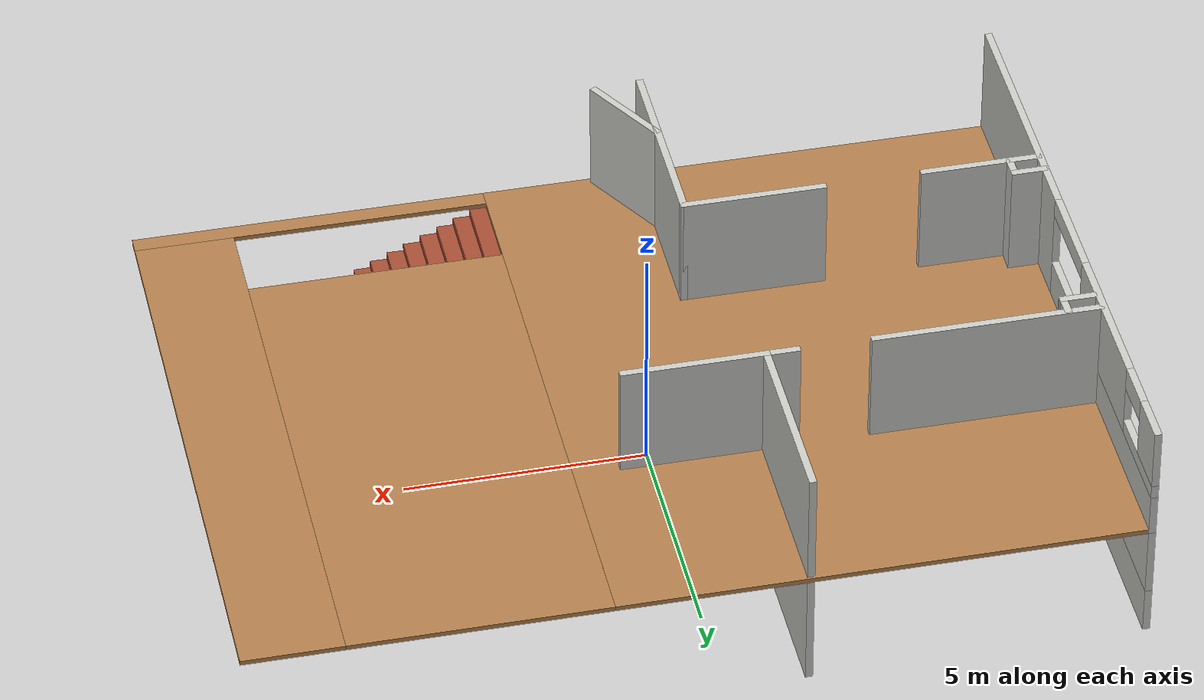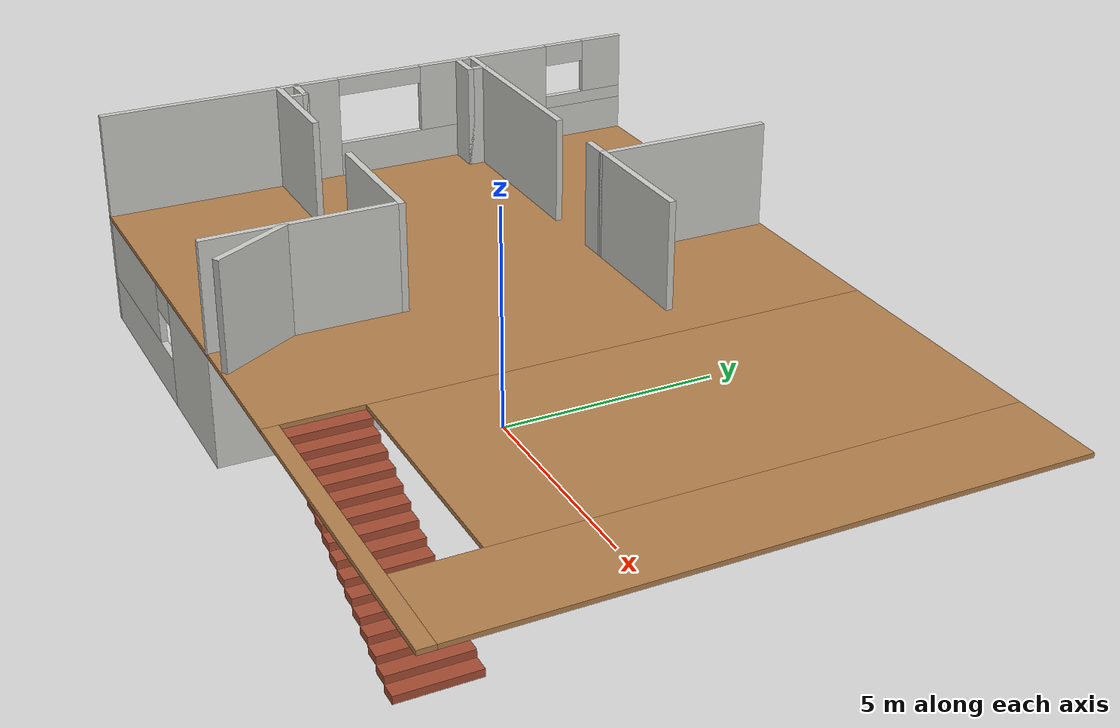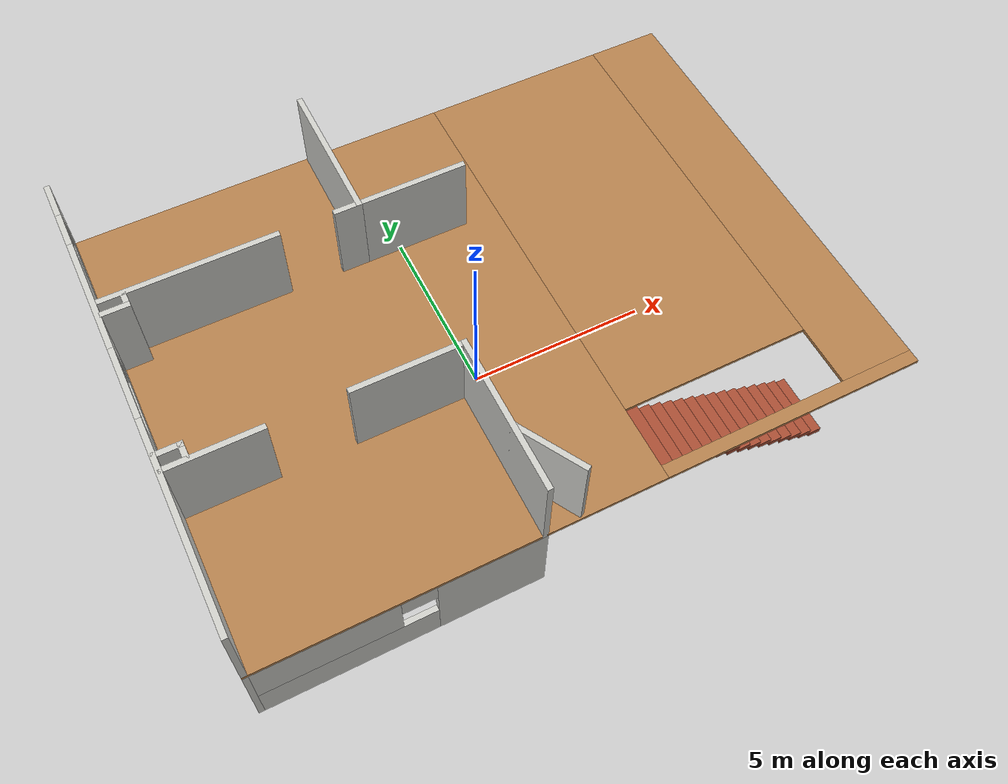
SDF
<sdf version="1.6">
 <model name="Indoor_Scenario1">
  <pose>0.463179 0.653592 0 0 -0 0</pose>
  <link name="Floor_0">
   <pose>-0 -0 2.5 0 -0 0</pose>
   <visual name="Floor_0_Visual_0">
    <pose>-3.6411 0 0.05 0 -0 0</pose>
    <geometry><box><size>10.7178 13 0.1</size></box></geometry>
    <material>
     <script><uri>file://media/materials/scripts/gazebo.material</uri><name>Gazebo/Wood</name></script>
     <ambient>1 1 1 1</ambient>
    </material>
    <meta><layer>1</layer></meta>
   </visual>
   <collision name="Floor_0_Collision_0">
    <geometry><box><size>10.7178 13 0.1</size></box></geometry>
    <pose>-3.6411 0 0.05 0 -0 0</pose>
   </collision>
   <visual name="Floor_0_Visual_1">
    <pose>5.3589 -6.32413 0.05 0 -0 0</pose>
    <geometry><box><size>7.2822 0.351742 0.1</size></box></geometry>
    <material>
     <script><uri>file://media/materials/scripts/gazebo.material</uri><name>Gazebo/Wood</name></script>
     <ambient>1 1 1 1</ambient>
    </material>
    <meta><layer>1</layer></meta>
   </visual>
   <collision name="Floor_0_Collision_1">
    <geometry><box><size>7.2822 0.351742 0.1</size></box></geometry>
    <pose>5.3589 -6.32413 0.05 0 -0 0</pose>
   </collision>
   <visual name="Floor_0_Visual_2">
    <pose>7.97998 0.175871 0.05 0 -0 0</pose>
    <geometry><box><size>2.04005 12.6483 0.1</size></box></geometry>
    <material>
     <script><uri>file://media/materials/scripts/gazebo.material</uri><name>Gazebo/Wood</name></script>
     <ambient>1 1 1 1</ambient>
    </material>
    <meta><layer>1</layer></meta>
   </visual>
   <collision name="Floor_0_Collision_2">
    <geometry><box><size>2.04005 12.6483 0.1</size></box></geometry>
    <pose>7.97998 0.175871 0.05 0 -0 0</pose>
   </collision>
   <visual name="Floor_0_Visual_3">
    <pose>4.33888 1.02587 0.05 0 -0 0</pose>
    <geometry><box><size>5.24215 10.9483 0.1</size></box></geometry>
    <material>
     <script><uri>file://media/materials/scripts/gazebo.material</uri><name>Gazebo/Wood</name></script>
     <ambient>1 1 1 1</ambient>
    </material>
    <meta><layer>1</layer></meta>
   </visual>
   <collision name="Floor_0_Collision_3">
    <geometry><box><size>5.24215 10.9483 0.1</size></box></geometry>
    <pose>4.33888 1.02587 0.05 0 -0 0</pose>
   </collision>
  </link>
  <link name="Stairs_0">
   <visual name="Stairs_0_Visual_0">
    <pose>6.78522 -5.29826 0.083333 0 -0 -1.5708</pose>
    <geometry><box><size>1.7 0.349477 0.166667</size></box></geometry>
    <material>
     <script><uri>file://media/materials/scripts/gazebo.material</uri><name>Gazebo/Bricks</name></script>
     <ambient>1 1 1 1</ambient>
    </material>
    <meta><layer>0</layer></meta>
   </visual>
   <collision name="Stairs_0_Collision_0">
    <geometry><box><size>1.7 0.349477 0.166667</size></box></geometry>
    <pose>6.78522 -5.29826 0.083333 0 -0 -1.5708</pose>
   </collision>
   <visual name="Stairs_0_Visual_1">
    <pose>6.43574 -5.29826 0.25 0 -0 -1.5708</pose>
    <geometry><box><size>1.7 0.349477 0.166667</size></box></geometry>
    <material>
     <script><uri>file://media/materials/scripts/gazebo.material</uri><name>Gazebo/Bricks</name></script>
     <ambient>1 1 1 1</ambient>
    </material>
    <meta><layer>0</layer></meta>
   </visual>
   <collision name="Stairs_0_Collision_1">
    <geometry><box><size>1.7 0.349477 0.166667</size></box></geometry>
    <pose>6.43574 -5.29826 0.25 0 -0 -1.5708</pose>
   </collision>
   <visual name="Stairs_0_Visual_2">
    <pose>6.08626 -5.29826 0.416667 0 -0 -1.5708</pose>
    <geometry><box><size>1.7 0.349477 0.166667</size></box></geometry>
    <material>
     <script><uri>file://media/materials/scripts/gazebo.material</uri><name>Gazebo/Bricks</name></script>
     <ambient>1 1 1 1</ambient>
    </material>
    <meta><layer>0</layer></meta>
   </visual>
   <collision name="Stairs_0_Collision_2">
    <geometry><box><size>1.7 0.349477 0.166667</size></box></geometry>
    <pose>6.08626 -5.29826 0.416667 0 -0 -1.5708</pose>
   </collision>
   <visual name="Stairs_0_Visual_3">
    <pose>5.73679 -5.29826 0.583333 0 -0 -1.5708</pose>
    <geometry><box><size>1.7 0.349477 0.166667</size></box></geometry>
    <material>
     <script><uri>file://media/materials/scripts/gazebo.material</uri><name>Gazebo/Bricks</name></script>
     <ambient>1 1 1 1</ambient>
    </material>
    <meta><layer>0</layer></meta>
   </visual>
   <collision name="Stairs_0_Collision_3">
    <geometry><box><size>1.7 0.349477 0.166667</size></box></geometry>
    <pose>5.73679 -5.29826 0.583333 0 -0 -1.5708</pose>
   </collision>
   <visual name="Stairs_0_Visual_4">
    <pose>5.38731 -5.29826 0.75 0 -0 -1.5708</pose>
    <geometry><box><size>1.7 0.349477 0.166667</size></box></geometry>
    <material>
     <script><uri>file://media/materials/scripts/gazebo.material</uri><name>Gazebo/Bricks</name></script>
     <ambient>1 1 1 1</ambient>
    </material>
    <meta><layer>0</layer></meta>
   </visual>
   <collision name="Stairs_0_Collision_4">
    <geometry><box><size>1.7 0.349477 0.166667</size></box></geometry>
    <pose>5.38731 -5.29826 0.75 0 -0 -1.5708</pose>
   </collision>
   <visual name="Stairs_0_Visual_5">
    <pose>5.03783 -5.29826 0.916667 0 -0 -1.5708</pose>
    <geometry><box><size>1.7 0.349477 0.166667</size></box></geometry>
    <material>
     <script><uri>file://media/materials/scripts/gazebo.material</uri><name>Gazebo/Bricks</name></script>
     <ambient>1 1 1 1</ambient>
    </material>
    <meta><layer>0</layer></meta>
   </visual>
   <collision name="Stairs_0_Collision_5">
    <geometry><box><size>1.7 0.349477 0.166667</size></box></geometry>
    <pose>5.03783 -5.29826 0.916667 0 -0 -1.5708</pose>
   </collision>
   <visual name="Stairs_0_Visual_6">
    <pose>4.68835 -5.29826 1.08333 0 -0 -1.5708</pose>
    <geometry><box><size>1.7 0.349477 0.166667</size></box></geometry>
    <material>
     <script><uri>file://media/materials/scripts/gazebo.material</uri><name>Gazebo/Bricks</name></script>
     <ambient>1 1 1 1</ambient>
    </material>
    <meta><layer>0</layer></meta>
   </visual>
   <collision name="Stairs_0_Collision_6">
    <geometry><box><size>1.7 0.349477 0.166667</size></box></geometry>
    <pose>4.68835 -5.29826 1.08333 0 -0 -1.5708</pose>
   </collision>
   <visual name="Stairs_0_Visual_7">
    <pose>4.33888 -5.29826 1.25 0 -0 -1.5708</pose>
    <geometry><box><size>1.7 0.349477 0.166667</size></box></geometry>
    <material>
     <script><uri>file://media/materials/scripts/gazebo.material</uri><name>Gazebo/Bricks</name></script>
     <ambient>1 1 1 1</ambient>
    </material>
    <meta><layer>0</layer></meta>
   </visual>
   <collision name="Stairs_0_Collision_7">
    <geometry><box><size>1.7 0.349477 0.166667</size></box></geometry>
    <pose>4.33888 -5.29826 1.25 0 -0 -1.5708</pose>
   </collision>
   <visual name="Stairs_0_Visual_8">
    <pose>3.9894 -5.29826 1.41667 0 -0 -1.5708</pose>
    <geometry><box><size>1.7 0.349477 0.166667</size></box></geometry>
    <material>
     <script><uri>file://media/materials/scripts/gazebo.material</uri><name>Gazebo/Bricks</name></script>
     <ambient>1 1 1 1</ambient>
    </material>
    <meta><layer>0</layer></meta>
   </visual>
   <collision name="Stairs_0_Collision_8">
    <geometry><box><size>1.7 0.349477 0.166667</size></box></geometry>
    <pose>3.9894 -5.29826 1.41667 0 -0 -1.5708</pose>
   </collision>
   <visual name="Stairs_0_Visual_9">
    <pose>3.63992 -5.29826 1.58333 0 -0 -1.5708</pose>
    <geometry><box><size>1.7 0.349477 0.166667</size></box></geometry>
    <material>
     <script><uri>file://media/materials/scripts/gazebo.material</uri><name>Gazebo/Bricks</name></script>
     <ambient>1 1 1 1</ambient>
    </material>
    <meta><layer>0</layer></meta>
   </visual>
   <collision name="Stairs_0_Collision_9">
    <geometry><box><size>1.7 0.349477 0.166667</size></box></geometry>
    <pose>3.63992 -5.29826 1.58333 0 -0 -1.5708</pose>
   </collision>
   <visual name="Stairs_0_Visual_10">
    <pose>3.29045 -5.29826 1.75 0 -0 -1.5708</pose>
    <geometry><box><size>1.7 0.349477 0.166667</size></box></geometry>
    <material>
     <script><uri>file://media/materials/scripts/gazebo.material</uri><name>Gazebo/Bricks</name></script>
     <ambient>1 1 1 1</ambient>
    </material>
    <meta><layer>0</layer></meta>
   </visual>
   <collision name="Stairs_0_Collision_10">
    <geometry><box><size>1.7 0.349477 0.166667</size></box></geometry>
    <pose>3.29045 -5.29826 1.75 0 -0 -1.5708</pose>
   </collision>
   <visual name="Stairs_0_Visual_11">
    <pose>2.94097 -5.29826 1.91667 0 -0 -1.5708</pose>
    <geometry><box><size>1.7 0.349477 0.166667</size></box></geometry>
    <material>
     <script><uri>file://media/materials/scripts/gazebo.material</uri><name>Gazebo/Bricks</name></script>
     <ambient>1 1 1 1</ambient>
    </material>
    <meta><layer>0</layer></meta>
   </visual>
   <collision name="Stairs_0_Collision_11">
    <geometry><box><size>1.7 0.349477 0.166667</size></box></geometry>
    <pose>2.94097 -5.29826 1.91667 0 -0 -1.5708</pose>
   </collision>
   <visual name="Stairs_0_Visual_12">
    <pose>2.59149 -5.29826 2.08333 0 -0 -1.5708</pose>
    <geometry><box><size>1.7 0.349477 0.166667</size></box></geometry>
    <material>
     <script><uri>file://media/materials/scripts/gazebo.material</uri><name>Gazebo/Bricks</name></script>
     <ambient>1 1 1 1</ambient>
    </material>
    <meta><layer>0</layer></meta>
   </visual>
   <collision name="Stairs_0_Collision_12">
    <geometry><box><size>1.7 0.349477 0.166667</size></box></geometry>
    <pose>2.59149 -5.29826 2.08333 0 -0 -1.5708</pose>
   </collision>
   <visual name="Stairs_0_Visual_13">
    <pose>2.24202 -5.29826 2.25 0 -0 -1.5708</pose>
    <geometry><box><size>1.7 0.349477 0.166667</size></box></geometry>
    <material>
     <script><uri>file://media/materials/scripts/gazebo.material</uri><name>Gazebo/Bricks</name></script>
     <ambient>1 1 1 1</ambient>
    </material>
    <meta><layer>0</layer></meta>
   </visual>
   <collision name="Stairs_0_Collision_13">
    <geometry><box><size>1.7 0.349477 0.166667</size></box></geometry>
    <pose>2.24202 -5.29826 2.25 0 -0 -1.5708</pose>
   </collision>
   <visual name="Stairs_0_Visual_14">
    <pose>1.89254 -5.29826 2.41667 0 -0 -1.5708</pose>
    <geometry><box><size>1.7 0.349477 0.166667</size></box></geometry>
    <material>
     <script><uri>file://media/materials/scripts/gazebo.material</uri><name>Gazebo/Bricks</name></script>
     <ambient>1 1 1 1</ambient>
    </material>
    <meta><layer>0</layer></meta>
   </visual>
   <collision name="Stairs_0_Collision_14">
    <geometry><box><size>1.7 0.349477 0.166667</size></box></geometry>
    <pose>1.89254 -5.29826 2.41667 0 -0 -1.5708</pose>
   </collision>
  </link>
  <link name="Wall_0">
   <pose>-5.25 -6.425 0 0 -0 3.14159</pose>
   <visual name="Wall_0_Visual_0">
    <pose>-2.33577 0 1.25 0 -0 0</pose>
    <geometry><box><size>2.82847 0.15 2.5</size></box></geometry>
    <material>
     <script><uri>file://media/materials/scripts/gazebo.material</uri><name>Gazebo/CeilingTiled</name></script>
     <ambient>0.647059 0.505882 0.309804 1</ambient>
    </material>
    <meta><layer>0</layer></meta>
   </visual>
   <collision name="Wall_0_Collision_0">
    <geometry><box><size>2.82847 0.15 2.5</size></box></geometry>
    <pose>-2.33577 0 1.25 0 -0 0</pose>
   </collision>
   <visual name="Wall_0_Visual_1">
    <pose>1.41423 0 0.55 0 -0 0</pose>
    <geometry><box><size>4.67153 0.15 1.1</size></box></geometry>
    <material>
     <script><uri>file://media/materials/scripts/gazebo.material</uri><name>Gazebo/CeilingTiled</name></script>
     <ambient>0.647059 0.505882 0.309804 1</ambient>
    </material>
    <meta><layer>0</layer></meta>
   </visual>
   <collision name="Wall_0_Collision_1">
    <geometry><box><size>4.67153 0.15 1.1</size></box></geometry>
    <pose>1.41423 0 0.55 0 -0 0</pose>
   </collision>
   <visual name="Wall_0_Visual_2">
    <pose>1.86423 0 1.8 0 -0 0</pose>
    <geometry><box><size>3.77153 0.15 1.4</size></box></geometry>
    <material>
     <script><uri>file://media/materials/scripts/gazebo.material</uri><name>Gazebo/CeilingTiled</name></script>
     <ambient>0.647059 0.505882 0.309804 1</ambient>
    </material>
    <meta><layer>0</layer></meta>
   </visual>
   <collision name="Wall_0_Collision_2">
    <geometry><box><size>3.77153 0.15 1.4</size></box></geometry>
    <pose>1.86423 0 1.8 0 -0 0</pose>
   </collision>
   <visual name="Wall_0_Visual_3">
    <pose>-0.471532 0 2.2 0 -0 0</pose>
    <geometry><box><size>0.9 0.15 0.6</size></box></geometry>
    <material>
     <script><uri>file://media/materials/scripts/gazebo.material</uri><name>Gazebo/CeilingTiled</name></script>
     <ambient>0.647059 0.505882 0.309804 1</ambient>
    </material>
    <meta><layer>0</layer></meta>
   </visual>
   <collision name="Wall_0_Collision_3">
    <geometry><box><size>0.9 0.15 0.6</size></box></geometry>
    <pose>-0.471532 0 2.2 0 -0 0</pose>
   </collision>
  </link>
  <link name="Wall_1">
   <pose>-8.925 -0 0 0 -0 1.5708</pose>
   <visual name="Wall_1_Visual_0">
    <pose>-5.77686 0 1.25 0 -0 0</pose>
    <geometry><box><size>1.44627 0.15 2.5</size></box></geometry>
    <material>
     <script><uri>file://media/materials/scripts/gazebo.material</uri><name>Gazebo/CeilingTiled</name></script>
     <ambient>0.647059 0.505882 0.309804 1</ambient>
    </material>
    <meta><layer>0</layer></meta>
   </visual>
   <collision name="Wall_1_Collision_0">
    <geometry><box><size>1.44627 0.15 2.5</size></box></geometry>
    <pose>-5.77686 0 1.25 0 -0 0</pose>
   </collision>
   <visual name="Wall_1_Visual_1">
    <pose>-2.10736 0 0.5 0 -0 0</pose>
    <geometry><box><size>5.89273 0.15 1</size></box></geometry>
    <material>
     <script><uri>file://media/materials/scripts/gazebo.material</uri><name>Gazebo/CeilingTiled</name></script>
     <ambient>0.647059 0.505882 0.309804 1</ambient>
    </material>
    <meta><layer>0</layer></meta>
   </visual>
   <collision name="Wall_1_Collision_1">
    <geometry><box><size>5.89273 0.15 1</size></box></geometry>
    <pose>-2.10736 0 0.5 0 -0 0</pose>
   </collision>
   <visual name="Wall_1_Visual_2">
    <pose>3.6695 0 0.5 0 -0 0</pose>
    <geometry><box><size>5.66099 0.15 1</size></box></geometry>
    <material>
     <script><uri>file://media/materials/scripts/gazebo.material</uri><name>Gazebo/CeilingTiled</name></script>
     <ambient>0.647059 0.505882 0.309804 1</ambient>
    </material>
    <meta><layer>0</layer></meta>
   </visual>
   <collision name="Wall_1_Collision_2">
    <geometry><box><size>5.66099 0.15 1</size></box></geometry>
    <pose>3.6695 0 0.5 0 -0 0</pose>
   </collision>
   <visual name="Wall_1_Visual_3">
    <pose>4.1195 0 1.75 0 -0 0</pose>
    <geometry><box><size>4.76099 0.15 1.5</size></box></geometry>
    <material>
     <script><uri>file://media/materials/scripts/gazebo.material</uri><name>Gazebo/CeilingTiled</name></script>
     <ambient>0.647059 0.505882 0.309804 1</ambient>
    </material>
    <meta><layer>0</layer></meta>
   </visual>
   <collision name="Wall_1_Collision_3">
    <geometry><box><size>4.76099 0.15 1.5</size></box></geometry>
    <pose>4.1195 0 1.75 0 -0 0</pose>
   </collision>
   <visual name="Wall_1_Visual_4">
    <pose>-1.60736 0 1.75 0 -0 0</pose>
    <geometry><box><size>4.89273 0.15 1.5</size></box></geometry>
    <material>
     <script><uri>file://media/materials/scripts/gazebo.material</uri><name>Gazebo/CeilingTiled</name></script>
     <ambient>0.647059 0.505882 0.309804 1</ambient>
    </material>
    <meta><layer>0</layer></meta>
   </visual>
   <collision name="Wall_1_Collision_4">
    <geometry><box><size>4.89273 0.15 1.5</size></box></geometry>
    <pose>-1.60736 0 1.75 0 -0 0</pose>
   </collision>
   <visual name="Wall_1_Visual_5">
    <pose>-1.60736 0 1.75 0 -0 0</pose>
    <geometry><box><size>4.89273 0.15 1.5</size></box></geometry>
    <material>
     <script><uri>file://media/materials/scripts/gazebo.material</uri><name>Gazebo/CeilingTiled</name></script>
     <ambient>0.647059 0.505882 0.309804 1</ambient>
    </material>
    <meta><layer>0</layer></meta>
   </visual>
   <collision name="Wall_1_Collision_5">
    <geometry><box><size>4.89273 0.15 1.5</size></box></geometry>
    <pose>-1.60736 0 1.75 0 -0 0</pose>
   </collision>
   <visual name="Wall_1_Visual_6">
    <pose>1.28901 0 2.25 0 -0 0</pose>
    <geometry><box><size>0.9 0.15 0.5</size></box></geometry>
    <material>
     <script><uri>file://media/materials/scripts/gazebo.material</uri><name>Gazebo/CeilingTiled</name></script>
     <ambient>0.647059 0.505882 0.309804 1</ambient>
    </material>
    <meta><layer>0</layer></meta>
   </visual>
   <collision name="Wall_1_Collision_6">
    <geometry><box><size>0.9 0.15 0.5</size></box></geometry>
    <pose>1.28901 0 2.25 0 -0 0</pose>
   </collision>
   <visual name="Wall_1_Visual_7">
    <pose>1.28901 0 2.25 0 -0 0</pose>
    <geometry><box><size>0.9 0.15 0.5</size></box></geometry>
    <material>
     <script><uri>file://media/materials/scripts/gazebo.material</uri><name>Gazebo/CeilingTiled</name></script>
     <ambient>0.647059 0.505882 0.309804 1</ambient>
    </material>
    <meta><layer>0</layer></meta>
   </visual>
   <collision name="Wall_1_Collision_7">
    <geometry><box><size>0.9 0.15 0.5</size></box></geometry>
    <pose>1.28901 0 2.25 0 -0 0</pose>
   </collision>
   <visual name="Wall_1_Visual_8">
    <pose>-4.55373 0 2.35 0 -0 0</pose>
    <geometry><box><size>1 0.15 0.3</size></box></geometry>
    <material>
     <script><uri>file://media/materials/scripts/gazebo.material</uri><name>Gazebo/CeilingTiled</name></script>
     <ambient>0.647059 0.505882 0.309804 1</ambient>
    </material>
    <meta><layer>0</layer></meta>
   </visual>
   <collision name="Wall_1_Collision_8">
    <geometry><box><size>1 0.15 0.3</size></box></geometry>
    <pose>-4.55373 0 2.35 0 -0 0</pose>
   </collision>
  </link>
  <link name="Wall_10">
   <collision name="Wall_10_Collision">
    <geometry><box><size>4.25 0.15 2.5</size></box></geometry>
    <pose>0 0 1.25 0 -0 0</pose>
   </collision>
   <visual name="Wall_10_Visual">
    <pose>0 0 1.25 0 -0 0</pose>
    <geometry><box><size>4.25 0.15 2.5</size></box></geometry>
    <material>
     <script><uri>file://media/materials/scripts/gazebo.material</uri><name>Gazebo/CeilingTiled</name></script>
     <ambient>0.647059 0.505882 0.309804 1</ambient>
    </material>
    <meta><layer>0</layer></meta>
   </visual>
   <pose>-1.575 -4.375 0 0 -0 1.5708</pose>
  </link>
  <link name="Wall_101">
   <collision name="Wall_101_Collision">
    <geometry><box><size>0.75 0.15 2.5</size></box></geometry>
    <pose>0 0 1.25 0 -0 0</pose>
   </collision>
   <visual name="Wall_101_Visual">
    <pose>0 0 1.25 0 -0 0</pose>
    <geometry><box><size>0.75 0.15 2.5</size></box></geometry>
    <material>
     <script><uri>file://media/materials/scripts/gazebo.material</uri><name>Gazebo/CeilingTiled</name></script>
     <ambient>1 1 1 1</ambient>
    </material>
    <meta><layer>1</layer></meta>
   </visual>
   <pose>-8.58941 -1.93229 2.5 0 -0 0</pose>
  </link>
  <link name="Wall_102">
   <collision name="Wall_102_Collision">
    <geometry><box><size>0.5 0.15 2.5</size></box></geometry>
    <pose>0 0 1.25 0 -0 0</pose>
   </collision>
   <visual name="Wall_102_Visual">
    <pose>0 0 1.25 0 -0 0</pose>
    <geometry><box><size>0.5 0.15 2.5</size></box></geometry>
    <material>
     <script><uri>file://media/materials/scripts/gazebo.material</uri><name>Gazebo/CeilingTiled</name></script>
     <ambient>1 1 1 1</ambient>
    </material>
    <meta><layer>1</layer></meta>
   </visual>
   <pose>-8.28941 -2.10729 2.5 0 -0 -1.5708</pose>
  </link>
  <link name="Wall_12">
   <collision name="Wall_12_Collision">
    <geometry><box><size>2 0.15 2.5</size></box></geometry>
    <pose>0 0 1.25 0 -0 0</pose>
   </collision>
   <visual name="Wall_12_Visual">
    <pose>0 0 1.25 0 -0 0</pose>
    <geometry><box><size>2 0.15 2.5</size></box></geometry>
    <material>
     <script><uri>file://media/materials/scripts/gazebo.material</uri><name>Gazebo/CeilingTiled</name></script>
     <ambient>1 1 1 1</ambient>
    </material>
    <meta><layer>0</layer></meta>
   </visual>
   <pose>-2.5 -2.325 0 0 -0 3.14159</pose>
  </link>
  <link name="Wall_14">
   <collision name="Wall_14_Collision">
    <geometry><box><size>3.5 0.15 2.5</size></box></geometry>
    <pose>0 0 1.25 0 -0 0</pose>
   </collision>
   <visual name="Wall_14_Visual">
    <pose>0 0 1.25 0 -0 0</pose>
    <geometry><box><size>3.5 0.15 2.5</size></box></geometry>
    <material>
     <script><uri>file://media/materials/scripts/gazebo.material</uri><name>Gazebo/CeilingTiled</name></script>
     <ambient>1 1 1 1</ambient>
    </material>
    <meta><layer>0</layer></meta>
   </visual>
   <pose>-7.19556 -2.34297 0 0 -0 0</pose>
  </link>
  <link name="Wall_23">
   <collision name="Wall_23_Collision">
    <geometry><box><size>4 0.15 2.5</size></box></geometry>
    <pose>0 0 1.25 0 -0 0</pose>
   </collision>
   <visual name="Wall_23_Visual">
    <pose>0 0 1.25 0 -0 0</pose>
    <geometry><box><size>4 0.15 2.5</size></box></geometry>
    <material>
     <script><uri>file://media/materials/scripts/gazebo.material</uri><name>Gazebo/CeilingTiled</name></script>
     <ambient>1 1 1 1</ambient>
    </material>
    <meta><layer>0</layer></meta>
   </visual>
   <pose>-2.14075 4.44918 0 0 -0 -1.5708</pose>
  </link>
  <link name="Wall_24">
   <collision name="Wall_24_Collision">
    <geometry><box><size>1.25 0.15 2.5</size></box></geometry>
    <pose>0 0 1.25 0 -0 0</pose>
   </collision>
   <visual name="Wall_24_Visual">
    <pose>0 0 1.25 0 -0 0</pose>
    <geometry><box><size>1.25 0.15 2.5</size></box></geometry>
    <material>
     <script><uri>file://media/materials/scripts/gazebo.material</uri><name>Gazebo/CeilingTiled</name></script>
     <ambient>1 1 1 1</ambient>
    </material>
    <meta><layer>0</layer></meta>
   </visual>
   <pose>-2.69075 2.52418 0 0 -0 3.14159</pose>
  </link>
  <link name="Wall_28">
   <collision name="Wall_28_Collision">
    <geometry><box><size>4 0.15 2.5</size></box></geometry>
    <pose>0 0 1.25 0 -0 0</pose>
   </collision>
   <visual name="Wall_28_Visual">
    <pose>0 0 1.25 0 -0 0</pose>
    <geometry><box><size>4 0.15 2.5</size></box></geometry>
    <material>
     <script><uri>file://media/materials/scripts/gazebo.material</uri><name>Gazebo/CeilingTiled</name></script>
     <ambient>1 1 1 1</ambient>
    </material>
    <meta><layer>0</layer></meta>
   </visual>
   <pose>-6.98364 2.52637 0 0 -0 0</pose>
  </link>
  <link name="Wall_31">
   <collision name="Wall_31_Collision">
    <geometry><box><size>2 0.15 2.5</size></box></geometry>
    <pose>0 0 1.25 0 -0 0</pose>
   </collision>
   <visual name="Wall_31_Visual">
    <pose>0 0 1.25 0 -0 0</pose>
    <geometry><box><size>2 0.15 2.5</size></box></geometry>
    <material>
     <script><uri>file://media/materials/scripts/gazebo.material</uri><name>Gazebo/CeilingTiled</name></script>
     <ambient>1 1 1 1</ambient>
    </material>
    <meta><layer>0</layer></meta>
   </visual>
   <pose>-7.19005 1.55574 0 0 -0 -1.5708</pose>
  </link>
  <link name="Wall_33">
   <collision name="Wall_33_Collision">
    <geometry><box><size>1.5 0.15 2.5</size></box></geometry>
    <pose>0 0 1.25 0 -0 0</pose>
   </collision>
   <visual name="Wall_33_Visual">
    <pose>0 0 1.25 0 -0 0</pose>
    <geometry><box><size>1.5 0.15 2.5</size></box></geometry>
    <material>
     <script><uri>file://media/materials/scripts/gazebo.material</uri><name>Gazebo/CeilingTiled</name></script>
     <ambient>1 1 1 1</ambient>
    </material>
    <meta><layer>0</layer></meta>
   </visual>
   <pose>-7.22047 -1.63502 0 0 -0 1.5708</pose>
  </link>
  <link name="Wall_35">
   <collision name="Wall_35_Collision">
    <geometry><box><size>3 0.15 2.5</size></box></geometry>
    <pose>0 0 1.25 0 -0 0</pose>
   </collision>
   <visual name="Wall_35_Visual">
    <pose>0 0 1.25 0 -0 0</pose>
    <geometry><box><size>3 0.15 2.5</size></box></geometry>
    <material>
     <script><uri>file://media/materials/scripts/gazebo.material</uri><name>Gazebo/CeilingTiled</name></script>
     <ambient>1 1 1 1</ambient>
    </material>
    <meta><layer>0</layer></meta>
   </visual>
   <pose>-0.715749 2.52418 0 0 -0 0</pose>
  </link>
  <link name="Wall_50">
   <collision name="Wall_50_Collision">
    <geometry><box><size>0.75 0.15 2.5</size></box></geometry>
    <pose>0 0 1.25 0 -0 0</pose>
   </collision>
   <visual name="Wall_50_Visual">
    <pose>0 0 1.25 0 -0 0</pose>
    <geometry><box><size>0.75 0.15 2.5</size></box></geometry>
    <material>
     <script><uri>file://media/materials/scripts/gazebo.material</uri><name>Gazebo/CeilingTiled</name></script>
     <ambient>1 1 1 1</ambient>
    </material>
    <meta><layer>0</layer></meta>
   </visual>
   <pose>-6.87479 2.33749 0 0 -0 0.523599</pose>
  </link>
  <link name="Wall_52">
   <collision name="Wall_52_Collision">
    <geometry><box><size>0.75 0.15 2.5</size></box></geometry>
    <pose>0 0 1.25 0 -0 0</pose>
   </collision>
   <visual name="Wall_52_Visual">
    <pose>0 0 1.25 0 -0 0</pose>
    <geometry><box><size>0.75 0.15 2.5</size></box></geometry>
    <material>
     <script><uri>file://media/materials/scripts/gazebo.material</uri><name>Gazebo/CeilingTiled</name></script>
     <ambient>1 1 1 1</ambient>
    </material>
    <meta><layer>0</layer></meta>
   </visual>
   <pose>-6.90469 -2.13997 0 0 -0 2.61799</pose>
  </link>
  <link name="Wall_55">
   <pose>-8.925 -0 2.5 0 -0 1.5708</pose>
   <visual name="Wall_55_Visual_0">
    <pose>-3.7021 0 1.25 0 -0 0</pose>
    <geometry><box><size>5.59579 0.15 2.5</size></box></geometry>
    <material>
     <script><uri>file://media/materials/scripts/gazebo.material</uri><name>Gazebo/CeilingTiled</name></script>
     <ambient>0.647059 0.505882 0.305882 1</ambient>
    </material>
    <meta><layer>1</layer></meta>
   </visual>
   <collision name="Wall_55_Collision_0">
    <geometry><box><size>5.59579 0.15 2.5</size></box></geometry>
    <pose>-3.7021 0 1.25 0 -0 0</pose>
   </collision>
   <visual name="Wall_55_Visual_1">
    <pose>2.7979 0 0.45 0 -0 0</pose>
    <geometry><box><size>7.40421 0.15 0.9</size></box></geometry>
    <material>
     <script><uri>file://media/materials/scripts/gazebo.material</uri><name>Gazebo/CeilingTiled</name></script>
     <ambient>0.647059 0.505882 0.305882 1</ambient>
    </material>
    <meta><layer>1</layer></meta>
   </visual>
   <collision name="Wall_55_Collision_1">
    <geometry><box><size>7.40421 0.15 0.9</size></box></geometry>
    <pose>2.7979 0 0.45 0 -0 0</pose>
   </collision>
   <visual name="Wall_55_Visual_2">
    <pose>2.80473 0 1.7 0 -0 0</pose>
    <geometry><box><size>3.32387 0.15 1.6</size></box></geometry>
    <material>
     <script><uri>file://media/materials/scripts/gazebo.material</uri><name>Gazebo/CeilingTiled</name></script>
     <ambient>0.647059 0.505882 0.305882 1</ambient>
    </material>
    <meta><layer>1</layer></meta>
   </visual>
   <collision name="Wall_55_Collision_2">
    <geometry><box><size>3.32387 0.15 1.6</size></box></geometry>
    <pose>2.80473 0 1.7 0 -0 0</pose>
   </collision>
   <visual name="Wall_55_Visual_3">
    <pose>5.48333 0 1.05 0 -0 0</pose>
    <geometry><box><size>2.03333 0.15 0.3</size></box></geometry>
    <material>
     <script><uri>file://media/materials/scripts/gazebo.material</uri><name>Gazebo/CeilingTiled</name></script>
     <ambient>0.647059 0.505882 0.305882 1</ambient>
    </material>
    <meta><layer>1</layer></meta>
   </visual>
   <collision name="Wall_55_Collision_3">
    <geometry><box><size>2.03333 0.15 0.3</size></box></geometry>
    <pose>5.48333 0 1.05 0 -0 0</pose>
   </collision>
   <visual name="Wall_55_Visual_4">
    <pose>5.98333 0 1.85 0 -0 0</pose>
    <geometry><box><size>1.03333 0.15 1.3</size></box></geometry>
    <material>
     <script><uri>file://media/materials/scripts/gazebo.material</uri><name>Gazebo/CeilingTiled</name></script>
     <ambient>0.647059 0.505882 0.305882 1</ambient>
    </material>
    <meta><layer>1</layer></meta>
   </visual>
   <collision name="Wall_55_Collision_4">
    <geometry><box><size>1.03333 0.15 1.3</size></box></geometry>
    <pose>5.98333 0 1.85 0 -0 0</pose>
   </collision>
   <visual name="Wall_55_Visual_5">
    <pose>4.96667 0 2.25 0 -0 0</pose>
    <geometry><box><size>1 0.15 0.5</size></box></geometry>
    <material>
     <script><uri>file://media/materials/scripts/gazebo.material</uri><name>Gazebo/CeilingTiled</name></script>
     <ambient>0.647059 0.505882 0.305882 1</ambient>
    </material>
    <meta><layer>1</layer></meta>
   </visual>
   <collision name="Wall_55_Collision_5">
    <geometry><box><size>1 0.15 0.5</size></box></geometry>
    <pose>4.96667 0 2.25 0 -0 0</pose>
   </collision>
   <visual name="Wall_55_Visual_6">
    <pose>0.119295 0 2.3 0 -0 0</pose>
    <geometry><box><size>2.047 0.15 0.4</size></box></geometry>
    <material>
     <script><uri>file://media/materials/scripts/gazebo.material</uri><name>Gazebo/CeilingTiled</name></script>
     <ambient>0.647059 0.505882 0.305882 1</ambient>
    </material>
    <meta><layer>1</layer></meta>
   </visual>
   <collision name="Wall_55_Collision_6">
    <geometry><box><size>2.047 0.15 0.4</size></box></geometry>
    <pose>0.119295 0 2.3 0 -0 0</pose>
   </collision>
  </link>
  <link name="Wall_63">
   <collision name="Wall_63_Collision">
    <geometry><box><size>4.25 0.15 2.5</size></box></geometry>
    <pose>0 0 1.25 0 -0 0</pose>
   </collision>
   <visual name="Wall_63_Visual">
    <pose>0 0 1.25 0 -0 0</pose>
    <geometry><box><size>4.25 0.15 2.5</size></box></geometry>
    <material>
     <script><uri>file://media/materials/scripts/gazebo.material</uri><name>Gazebo/CeilingTiled</name></script>
     <ambient>1 1 1 1</ambient>
    </material>
    <meta><layer>1</layer></meta>
   </visual>
   <pose>-1.575 -4.375 2.5 0 -0 1.5708</pose>
  </link>
  <link name="Wall_64">
   <collision name="Wall_64_Collision">
    <geometry><box><size>3 0.15 2.5</size></box></geometry>
    <pose>0 0 1.25 0 -0 0</pose>
   </collision>
   <visual name="Wall_64_Visual">
    <pose>0 0 1.25 0 -0 0</pose>
    <geometry><box><size>3 0.15 2.5</size></box></geometry>
    <material>
     <script><uri>file://media/materials/scripts/gazebo.material</uri><name>Gazebo/CeilingTiled</name></script>
     <ambient>1 1 1 1</ambient>
    </material>
    <meta><layer>1</layer></meta>
   </visual>
   <pose>-3 -2.325 2.5 0 -0 3.14159</pose>
  </link>
  <link name="Wall_65">
   <collision name="Wall_65_Collision">
    <geometry><box><size>2.5 0.15 2.5</size></box></geometry>
    <pose>0 0 1.25 0 -0 0</pose>
   </collision>
   <visual name="Wall_65_Visual">
    <pose>0 0 1.25 0 -0 0</pose>
    <geometry><box><size>2.5 0.15 2.5</size></box></geometry>
    <material>
     <script><uri>file://media/materials/scripts/gazebo.material</uri><name>Gazebo/CeilingTiled</name></script>
     <ambient>1 1 1 1</ambient>
    </material>
    <meta><layer>1</layer></meta>
   </visual>
   <pose>-7.69556 -2.34297 2.5 0 -0 0</pose>
  </link>
  <link name="Wall_67">
   <collision name="Wall_67_Collision">
    <geometry><box><size>4 0.15 2.5</size></box></geometry>
    <pose>0 0 1.25 0 -0 0</pose>
   </collision>
   <visual name="Wall_67_Visual">
    <pose>0 0 1.25 0 -0 0</pose>
    <geometry><box><size>4 0.15 2.5</size></box></geometry>
    <material>
     <script><uri>file://media/materials/scripts/gazebo.material</uri><name>Gazebo/CeilingTiled</name></script>
     <ambient>1 1 1 1</ambient>
    </material>
    <meta><layer>1</layer></meta>
   </visual>
   <pose>-2.14075 4.44918 2.5 0 -0 -1.5708</pose>
  </link>
  <link name="Wall_68">
   <collision name="Wall_68_Collision">
    <geometry><box><size>0.75 0.15 2.5</size></box></geometry>
    <pose>0 0 1.25 0 -0 0</pose>
   </collision>
   <visual name="Wall_68_Visual">
    <pose>0 0 1.25 0 -0 0</pose>
    <geometry><box><size>0.75 0.15 2.5</size></box></geometry>
    <material>
     <script><uri>file://media/materials/scripts/gazebo.material</uri><name>Gazebo/CeilingTiled</name></script>
     <ambient>1 1 1 1</ambient>
    </material>
    <meta><layer>1</layer></meta>
   </visual>
   <pose>-2.44075 2.52418 2.5 0 -0 3.14159</pose>
  </link>
  <link name="Wall_69">
   <collision name="Wall_69_Collision">
    <geometry><box><size>4.75 0.15 2.5</size></box></geometry>
    <pose>0 0 1.25 0 -0 0</pose>
   </collision>
   <visual name="Wall_69_Visual">
    <pose>0 0 1.25 0 -0 0</pose>
    <geometry><box><size>4.75 0.15 2.5</size></box></geometry>
    <material>
     <script><uri>file://media/materials/scripts/gazebo.material</uri><name>Gazebo/CeilingTiled</name></script>
     <ambient>1 1 1 1</ambient>
    </material>
    <meta><layer>1</layer></meta>
   </visual>
   <pose>-6.60864 2.52637 2.5 0 -0 0</pose>
  </link>
  <link name="Wall_72">
   <collision name="Wall_72_Collision">
    <geometry><box><size>3 0.15 2.5</size></box></geometry>
    <pose>0 0 1.25 0 -0 0</pose>
   </collision>
   <visual name="Wall_72_Visual">
    <pose>0 0 1.25 0 -0 0</pose>
    <geometry><box><size>3 0.15 2.5</size></box></geometry>
    <material>
     <script><uri>file://media/materials/scripts/gazebo.material</uri><name>Gazebo/CeilingTiled</name></script>
     <ambient>1 1 1 1</ambient>
    </material>
    <meta><layer>1</layer></meta>
   </visual>
   <pose>-0.715749 2.52418 2.5 0 -0 0</pose>
  </link>
  <link name="Wall_89">
   <collision name="Wall_89_Collision">
    <geometry><box><size>2 0.15 2.5</size></box></geometry>
    <pose>0 0 1.25 0 -0 0</pose>
   </collision>
   <visual name="Wall_89_Visual">
    <pose>0 0 1.25 0 -0 0</pose>
    <geometry><box><size>2 0.15 2.5</size></box></geometry>
    <material>
     <script><uri>file://media/materials/scripts/gazebo.material</uri><name>Gazebo/CeilingTiled</name></script>
     <ambient>1 1 1 1</ambient>
    </material>
    <meta><layer>1</layer></meta>
   </visual>
   <pose>-1.08545 -5.56938 2.5 0 -0 -1.0472</pose>
  </link>
  <link name="Wall_98">
   <collision name="Wall_98_Collision">
    <geometry><box><size>0.5 0.15 2.5</size></box></geometry>
    <pose>0 0 1.25 0 -0 0</pose>
   </collision>
   <visual name="Wall_98_Visual">
    <pose>0 0 1.25 0 -0 0</pose>
    <geometry><box><size>0.5 0.15 2.5</size></box></geometry>
    <material>
     <script><uri>file://media/materials/scripts/gazebo.material</uri><name>Gazebo/CeilingTiled</name></script>
     <ambient>1 1 1 1</ambient>
    </material>
    <meta><layer>1</layer></meta>
   </visual>
   <pose>-8.20554 2.3177 2.5 0 -0 -1.5708</pose>
  </link>
  <link name="Wall_99">
   <collision name="Wall_99_Collision">
    <geometry><box><size>0.75 0.15 2.5</size></box></geometry>
    <pose>0 0 1.25 0 -0 0</pose>
   </collision>
   <visual name="Wall_99_Visual">
    <pose>0 0 1.25 0 -0 0</pose>
    <geometry><box><size>0.75 0.15 2.5</size></box></geometry>
    <material>
     <script><uri>file://media/materials/scripts/gazebo.material</uri><name>Gazebo/CeilingTiled</name></script>
     <ambient>1 1 1 1</ambient>
    </material>
    <meta><layer>1</layer></meta>
   </visual>
   <pose>-8.50554 2.1427 2.5 0 -0 3.14159</pose>
  </link>
  <static>1</static>
 </model>
</sdf>
